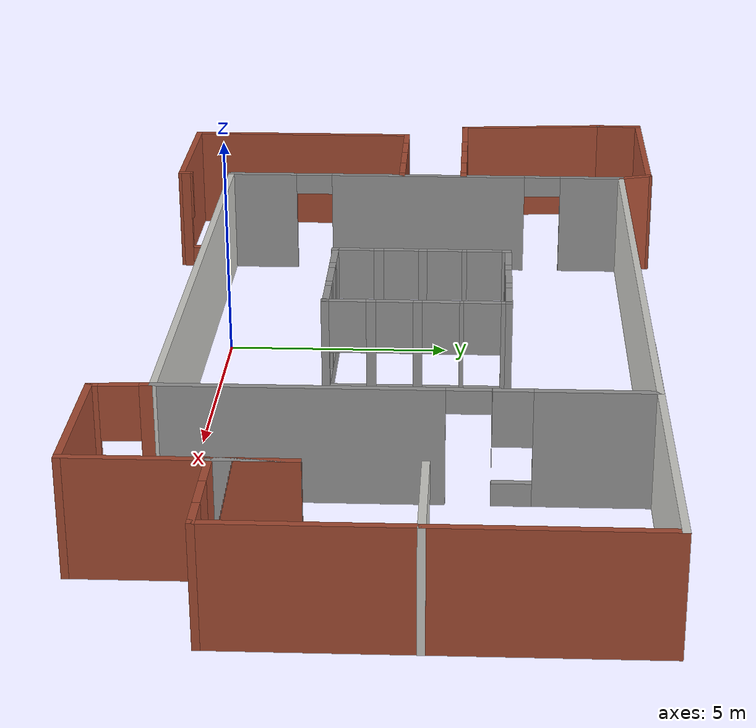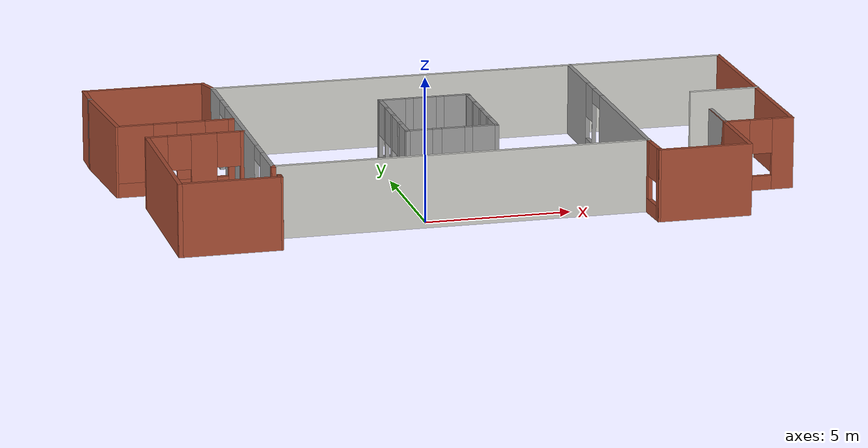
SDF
<?xml version='1.0'?>
<sdf version='1.6'>
  <model name='mainbuilding'>
    <pose frame=''>1.69313 4.10288 0 0 -0 0</pose>
    <link name='Wall_0'>
      <pose frame=''>-6.99313 0.272125 0 0 -0 1.5708</pose>
      <visual name='Wall_0_Visual_0'>
        <pose frame=''>-4.13418 0 1.25 0 -0 0</pose>
        <geometry>
          <box>
            <size>1.73164 0.15 2.5</size>
          </box>
        </geometry>
        <material>
          <script>
            <uri>file://media/materials/scripts/gazebo.material</uri>
            <name>Gazebo/Grey</name>
          </script>
          <ambient>1 1 1 1</ambient>
        </material>
        <meta>
          <layer>0</layer>
        </meta>
      </visual>
      <collision name='Wall_0_Collision_0'>
        <geometry>
          <box>
            <size>1.73164 0.15 2.5</size>
          </box>
        </geometry>
        <pose frame=''>-4.13418 0 1.25 0 -0 0</pose>
      </collision>
      <visual name='Wall_0_Visual_1'>
        <pose frame=''>0.06499 0 1.25 0 -0 0</pose>
        <geometry>
          <box>
            <size>4.86669 0.15 2.5</size>
          </box>
        </geometry>
        <material>
          <script>
            <uri>file://media/materials/scripts/gazebo.material</uri>
            <name>Gazebo/Grey</name>
          </script>
          <ambient>1 1 1 1</ambient>
        </material>
        <meta>
          <layer>0</layer>
        </meta>
      </visual>
      <collision name='Wall_0_Collision_1'>
        <geometry>
          <box>
            <size>4.86669 0.15 2.5</size>
          </box>
        </geometry>
        <pose frame=''>0.06499 0 1.25 0 -0 0</pose>
      </collision>
      <visual name='Wall_0_Visual_2'>
        <pose frame=''>4.19917 0 1.25 0 -0 0</pose>
        <geometry>
          <box>
            <size>1.60166 0.15 2.5</size>
          </box>
        </geometry>
        <material>
          <script>
            <uri>file://media/materials/scripts/gazebo.material</uri>
            <name>Gazebo/Grey</name>
          </script>
          <ambient>1 1 1 1</ambient>
        </material>
        <meta>
          <layer>0</layer>
        </meta>
      </visual>
      <collision name='Wall_0_Collision_2'>
        <geometry>
          <box>
            <size>1.60166 0.15 2.5</size>
          </box>
        </geometry>
        <pose frame=''>4.19917 0 1.25 0 -0 0</pose>
      </collision>
      <visual name='Wall_0_Visual_3'>
        <pose frame=''>-2.81836 0 2.25 0 -0 0</pose>
        <geometry>
          <box>
            <size>0.9 0.15 0.5</size>
          </box>
        </geometry>
        <material>
          <script>
            <uri>file://media/materials/scripts/gazebo.material</uri>
            <name>Gazebo/Grey</name>
          </script>
          <ambient>1 1 1 1</ambient>
        </material>
        <meta>
          <layer>0</layer>
        </meta>
      </visual>
      <collision name='Wall_0_Collision_3'>
        <geometry>
          <box>
            <size>0.9 0.15 0.5</size>
          </box>
        </geometry>
        <pose frame=''>-2.81836 0 2.25 0 -0 0</pose>
      </collision>
      <visual name='Wall_0_Visual_4'>
        <pose frame=''>2.94834 0 2.25 0 -0 0</pose>
        <geometry>
          <box>
            <size>0.9 0.15 0.5</size>
          </box>
        </geometry>
        <material>
          <script>
            <uri>file://media/materials/scripts/gazebo.material</uri>
            <name>Gazebo/Grey</name>
          </script>
          <ambient>1 1 1 1</ambient>
        </material>
        <meta>
          <layer>0</layer>
        </meta>
      </visual>
      <collision name='Wall_0_Collision_4'>
        <geometry>
          <box>
            <size>0.9 0.15 0.5</size>
          </box>
        </geometry>
        <pose frame=''>2.94834 0 2.25 0 -0 0</pose>
      </collision>
    </link>
    <link name='Wall_1'>
      <collision name='Wall_1_Collision'>
        <geometry>
          <box>
            <size>13 0.15 2.5</size>
          </box>
        </geometry>
        <pose frame=''>0 0 1.25 0 -0 0</pose>
      </collision>
      <visual name='Wall_1_Visual'>
        <pose frame=''>0 0 1.25 0 -0 0</pose>
        <geometry>
          <box>
            <size>13 0.15 2.5</size>
          </box>
        </geometry>
        <material>
          <script>
            <uri>file://media/materials/scripts/gazebo.material</uri>
            <name>Gazebo/CeilingTiled</name>
          </script>
          <ambient>1 1 1 1</ambient>
        </material>
        <meta>
          <layer>0</layer>
        </meta>
      </visual>
      <pose frame=''>-0.568132 5.19712 0 0 -0 0</pose>
    </link>
    <link name='Wall_10'>
      <pose frame=''>-9.04652 1.23125 0 0 -0 3.14159</pose>
      <visual name='Wall_10_Visual_0'>
        <pose frame=''>-1.93436 0 1.25 0 -0 0</pose>
        <geometry>
          <box>
            <size>0.331288 0.15 2.5</size>
          </box>
        </geometry>
        <material>
          <script>
            <uri>file://media/materials/scripts/gazebo.material</uri>
            <name>Gazebo/Bricks</name>
          </script>
          <ambient>1 1 1 1</ambient>
        </material>
        <meta>
          <layer>0</layer>
        </meta>
      </visual>
      <collision name='Wall_10_Collision_0'>
        <geometry>
          <box>
            <size>0.331288 0.15 2.5</size>
          </box>
        </geometry>
        <pose frame=''>-1.93436 0 1.25 0 -0 0</pose>
      </collision>
      <visual name='Wall_10_Visual_1'>
        <pose frame=''>0.165644 0 0.25 0 -0 0</pose>
        <geometry>
          <box>
            <size>3.86871 0.15 0.5</size>
          </box>
        </geometry>
        <material>
          <script>
            <uri>file://media/materials/scripts/gazebo.material</uri>
            <name>Gazebo/Bricks</name>
          </script>
          <ambient>1 1 1 1</ambient>
        </material>
        <meta>
          <layer>0</layer>
        </meta>
      </visual>
      <collision name='Wall_10_Collision_1'>
        <geometry>
          <box>
            <size>3.86871 0.15 0.5</size>
          </box>
        </geometry>
        <pose frame=''>0.165644 0 0.25 0 -0 0</pose>
      </collision>
      <visual name='Wall_10_Visual_2'>
        <pose frame=''>-0.478184 0 1.5 0 -0 0</pose>
        <geometry>
          <box>
            <size>0.981056 0.15 2</size>
          </box>
        </geometry>
        <material>
          <script>
            <uri>file://media/materials/scripts/gazebo.material</uri>
            <name>Gazebo/Bricks</name>
          </script>
          <ambient>1 1 1 1</ambient>
        </material>
        <meta>
          <layer>0</layer>
        </meta>
      </visual>
      <collision name='Wall_10_Collision_2'>
        <geometry>
          <box>
            <size>0.981056 0.15 2</size>
          </box>
        </geometry>
        <pose frame=''>-0.478184 0 1.5 0 -0 0</pose>
      </collision>
      <visual name='Wall_10_Visual_3'>
        <pose frame=''>1.45617 0 1.5 0 -0 0</pose>
        <geometry>
          <box>
            <size>1.28766 0.15 2</size>
          </box>
        </geometry>
        <material>
          <script>
            <uri>file://media/materials/scripts/gazebo.material</uri>
            <name>Gazebo/Bricks</name>
          </script>
          <ambient>1 1 1 1</ambient>
        </material>
        <meta>
          <layer>0</layer>
        </meta>
      </visual>
      <collision name='Wall_10_Collision_3'>
        <geometry>
          <box>
            <size>1.28766 0.15 2</size>
          </box>
        </geometry>
        <pose frame=''>1.45617 0 1.5 0 -0 0</pose>
      </collision>
      <visual name='Wall_10_Visual_4'>
        <pose frame=''>-1.36871 0 1.9 0 -0 0</pose>
        <geometry>
          <box>
            <size>0.8 0.15 1.2</size>
          </box>
        </geometry>
        <material>
          <script>
            <uri>file://media/materials/scripts/gazebo.material</uri>
            <name>Gazebo/Bricks</name>
          </script>
          <ambient>1 1 1 1</ambient>
        </material>
        <meta>
          <layer>0</layer>
        </meta>
      </visual>
      <collision name='Wall_10_Collision_4'>
        <geometry>
          <box>
            <size>0.8 0.15 1.2</size>
          </box>
        </geometry>
        <pose frame=''>-1.36871 0 1.9 0 -0 0</pose>
      </collision>
      <visual name='Wall_10_Visual_5'>
        <pose frame=''>0.412344 0 1.9 0 -0 0</pose>
        <geometry>
          <box>
            <size>0.8 0.15 1.2</size>
          </box>
        </geometry>
        <material>
          <script>
            <uri>file://media/materials/scripts/gazebo.material</uri>
            <name>Gazebo/Bricks</name>
          </script>
          <ambient>1 1 1 1</ambient>
        </material>
        <meta>
          <layer>0</layer>
        </meta>
      </visual>
      <collision name='Wall_10_Collision_5'>
        <geometry>
          <box>
            <size>0.8 0.15 1.2</size>
          </box>
        </geometry>
        <pose frame=''>0.412344 0 1.9 0 -0 0</pose>
      </collision>
    </link>
    <link name='Wall_11'>
      <collision name='Wall_11_Collision'>
        <geometry>
          <box>
            <size>3.7379 0.15 2.5</size>
          </box>
        </geometry>
        <pose frame=''>0 0 1.25 0 -0 0</pose>
      </collision>
      <visual name='Wall_11_Visual'>
        <pose frame=''>0 0 1.25 0 -0 0</pose>
        <geometry>
          <box>
            <size>3.7379 0.15 2.5</size>
          </box>
        </geometry>
        <material>
          <script>
            <uri>file://media/materials/scripts/gazebo.material</uri>
            <name>Gazebo/Bricks</name>
          </script>
          <ambient>1 1 1 1</ambient>
        </material>
        <meta>
          <layer>0</layer>
        </meta>
      </visual>
      <pose frame=''>-11.2354 3.01968 0 0 -0 1.64934</pose>
    </link>
    <link name='Wall_12'>
      <collision name='Wall_12_Collision'>
        <geometry>
          <box>
            <size>0.15 0.15 2.5</size>
          </box>
        </geometry>
        <pose frame=''>0 0 1.25 0 -0 0</pose>
      </collision>
      <visual name='Wall_12_Visual'>
        <pose frame=''>0 0 1.25 0 -0 0</pose>
        <geometry>
          <box>
            <size>0.15 0.15 2.5</size>
          </box>
        </geometry>
        <material>
          <script>
            <uri>file://media/materials/scripts/gazebo.material</uri>
            <name>Gazebo/Grey</name>
          </script>
          <ambient>1 1 1 1</ambient>
        </material>
        <meta>
          <layer>0</layer>
        </meta>
      </visual>
      <pose frame=''>-11.3762 4.8081 0 0 -0 0</pose>
    </link>
    <link name='Wall_13'>
      <collision name='Wall_13_Collision'>
        <geometry>
          <box>
            <size>1.25 0.15 2.5</size>
          </box>
        </geometry>
        <pose frame=''>0 0 1.25 0 -0 0</pose>
      </collision>
      <visual name='Wall_13_Visual'>
        <pose frame=''>0 0 1.25 0 -0 0</pose>
        <geometry>
          <box>
            <size>1.25 0.15 2.5</size>
          </box>
        </geometry>
        <material>
          <script>
            <uri>file://media/materials/scripts/gazebo.material</uri>
            <name>Gazebo/Bricks</name>
          </script>
          <ambient>1 1 1 1</ambient>
        </material>
        <meta>
          <layer>0</layer>
        </meta>
      </visual>
      <pose frame=''>-11.3762 5.3581 0 0 -0 1.5708</pose>
    </link>
    <link name='Wall_14'>
      <collision name='Wall_14_Collision'>
        <geometry>
          <box>
            <size>4.25 0.15 2.5</size>
          </box>
        </geometry>
        <pose frame=''>0 0 1.25 0 -0 0</pose>
      </collision>
      <visual name='Wall_14_Visual'>
        <pose frame=''>0 0 1.25 0 -0 0</pose>
        <geometry>
          <box>
            <size>4.25 0.15 2.5</size>
          </box>
        </geometry>
        <material>
          <script>
            <uri>file://media/materials/scripts/gazebo.material</uri>
            <name>Gazebo/Bricks</name>
          </script>
          <ambient>0 0 0 1</ambient>
        </material>
        <meta>
          <layer>0</layer>
        </meta>
      </visual>
      <pose frame=''>-9.25676 5.9081 0 0 -0 0</pose>
    </link>
    <link name='Wall_17'>
      <collision name='Wall_17_Collision'>
        <geometry>
          <box>
            <size>0.892375 0.15 2.5</size>
          </box>
        </geometry>
        <pose frame=''>0 0 1.25 0 -0 0</pose>
      </collision>
      <visual name='Wall_17_Visual'>
        <pose frame=''>0 0 1.25 0 -0 0</pose>
        <geometry>
          <box>
            <size>0.892375 0.15 2.5</size>
          </box>
        </geometry>
        <material>
          <script>
            <uri>file://media/materials/scripts/gazebo.material</uri>
            <name>Gazebo/Bricks</name>
          </script>
          <ambient>0 0 0 1</ambient>
        </material>
        <meta>
          <layer>0</layer>
        </meta>
      </visual>
      <pose frame=''>-7.09995 5.55261 0 0 0 -1.2789</pose>
    </link>
    <link name='Wall_19'>
      <pose frame=''>-8.68202 -0.325693 0 0 -0 3.14159</pose>
      <visual name='Wall_19_Visual_0'>
        <pose frame=''>-1.62337 0 1.25 0 -0 0</pose>
        <geometry>
          <box>
            <size>0.253265 0.15 2.5</size>
          </box>
        </geometry>
        <material>
          <script>
            <uri>file://media/materials/scripts/gazebo.material</uri>
            <name>Gazebo/Bricks</name>
          </script>
          <ambient>1 1 1 1</ambient>
        </material>
        <meta>
          <layer>0</layer>
        </meta>
      </visual>
      <collision name='Wall_19_Collision_0'>
        <geometry>
          <box>
            <size>0.253265 0.15 2.5</size>
          </box>
        </geometry>
        <pose frame=''>-1.62337 0 1.25 0 -0 0</pose>
      </collision>
      <visual name='Wall_19_Visual_1'>
        <pose frame=''>0.126632 0 0.25 0 -0 0</pose>
        <geometry>
          <box>
            <size>3.24674 0.15 0.5</size>
          </box>
        </geometry>
        <material>
          <script>
            <uri>file://media/materials/scripts/gazebo.material</uri>
            <name>Gazebo/Bricks</name>
          </script>
          <ambient>1 1 1 1</ambient>
        </material>
        <meta>
          <layer>0</layer>
        </meta>
      </visual>
      <collision name='Wall_19_Collision_1'>
        <geometry>
          <box>
            <size>3.24674 0.15 0.5</size>
          </box>
        </geometry>
        <pose frame=''>0.126632 0 0.25 0 -0 0</pose>
      </collision>
      <visual name='Wall_19_Visual_2'>
        <pose frame=''>-0.252468 0 1.5 0 -0 0</pose>
        <geometry>
          <box>
            <size>0.888534 0.15 2</size>
          </box>
        </geometry>
        <material>
          <script>
            <uri>file://media/materials/scripts/gazebo.material</uri>
            <name>Gazebo/Bricks</name>
          </script>
          <ambient>1 1 1 1</ambient>
        </material>
        <meta>
          <layer>0</layer>
        </meta>
      </visual>
      <collision name='Wall_19_Collision_2'>
        <geometry>
          <box>
            <size>0.888534 0.15 2</size>
          </box>
        </geometry>
        <pose frame=''>-0.252468 0 1.5 0 -0 0</pose>
      </collision>
      <visual name='Wall_19_Visual_3'>
        <pose frame=''>1.3709 0 1.5 0 -0 0</pose>
        <geometry>
          <box>
            <size>0.758201 0.15 2</size>
          </box>
        </geometry>
        <material>
          <script>
            <uri>file://media/materials/scripts/gazebo.material</uri>
            <name>Gazebo/Bricks</name>
          </script>
          <ambient>1 1 1 1</ambient>
        </material>
        <meta>
          <layer>0</layer>
        </meta>
      </visual>
      <collision name='Wall_19_Collision_3'>
        <geometry>
          <box>
            <size>0.758201 0.15 2</size>
          </box>
        </geometry>
        <pose frame=''>1.3709 0 1.5 0 -0 0</pose>
      </collision>
      <visual name='Wall_19_Visual_4'>
        <pose frame=''>-1.09674 0 1.9 0 -0 0</pose>
        <geometry>
          <box>
            <size>0.8 0.15 1.2</size>
          </box>
        </geometry>
        <material>
          <script>
            <uri>file://media/materials/scripts/gazebo.material</uri>
            <name>Gazebo/Bricks</name>
          </script>
          <ambient>1 1 1 1</ambient>
        </material>
        <meta>
          <layer>0</layer>
        </meta>
      </visual>
      <collision name='Wall_19_Collision_4'>
        <geometry>
          <box>
            <size>0.8 0.15 1.2</size>
          </box>
        </geometry>
        <pose frame=''>-1.09674 0 1.9 0 -0 0</pose>
      </collision>
      <visual name='Wall_19_Visual_5'>
        <pose frame=''>0.591799 0 1.9 0 -0 0</pose>
        <geometry>
          <box>
            <size>0.8 0.15 1.2</size>
          </box>
        </geometry>
        <material>
          <script>
            <uri>file://media/materials/scripts/gazebo.material</uri>
            <name>Gazebo/Bricks</name>
          </script>
          <ambient>1 1 1 1</ambient>
        </material>
        <meta>
          <layer>0</layer>
        </meta>
      </visual>
      <collision name='Wall_19_Collision_5'>
        <geometry>
          <box>
            <size>0.8 0.15 1.2</size>
          </box>
        </geometry>
        <pose frame=''>0.591799 0 1.9 0 -0 0</pose>
      </collision>
    </link>
    <link name='Wall_2'>
      <pose frame=''>5.85687 0.272125 0 0 0 -1.5708</pose>
      <visual name='Wall_2_Visual_0'>
        <pose frame=''>-3.74267 0 1.25 0 -0 0</pose>
        <geometry>
          <box>
            <size>2.51467 0.15 2.5</size>
          </box>
        </geometry>
        <material>
          <script>
            <uri>file://media/materials/scripts/gazebo.material</uri>
            <name>Gazebo/Grey</name>
          </script>
          <ambient>1 1 1 1</ambient>
        </material>
        <meta>
          <layer>0</layer>
        </meta>
      </visual>
      <collision name='Wall_2_Collision_0'>
        <geometry>
          <box>
            <size>2.51467 0.15 2.5</size>
          </box>
        </geometry>
        <pose frame=''>-3.74267 0 1.25 0 -0 0</pose>
      </collision>
      <visual name='Wall_2_Visual_1'>
        <pose frame=''>2.11025 0 1.25 0 -0 0</pose>
        <geometry>
          <box>
            <size>5.7795 0.15 2.5</size>
          </box>
        </geometry>
        <material>
          <script>
            <uri>file://media/materials/scripts/gazebo.material</uri>
            <name>Gazebo/Grey</name>
          </script>
          <ambient>1 1 1 1</ambient>
        </material>
        <meta>
          <layer>0</layer>
        </meta>
      </visual>
      <collision name='Wall_2_Collision_1'>
        <geometry>
          <box>
            <size>5.7795 0.15 2.5</size>
          </box>
        </geometry>
        <pose frame=''>2.11025 0 1.25 0 -0 0</pose>
      </collision>
      <visual name='Wall_2_Visual_2'>
        <pose frame=''>-2.08242 0 0.25 0 -0 0</pose>
        <geometry>
          <box>
            <size>0.805833 0.15 0.5</size>
          </box>
        </geometry>
        <material>
          <script>
            <uri>file://media/materials/scripts/gazebo.material</uri>
            <name>Gazebo/Grey</name>
          </script>
          <ambient>1 1 1 1</ambient>
        </material>
        <meta>
          <layer>0</layer>
        </meta>
      </visual>
      <collision name='Wall_2_Collision_2'>
        <geometry>
          <box>
            <size>0.805833 0.15 0.5</size>
          </box>
        </geometry>
        <pose frame=''>-2.08242 0 0.25 0 -0 0</pose>
      </collision>
      <visual name='Wall_2_Visual_3'>
        <pose frame=''>-1.68242 0 1.5 0 -0 0</pose>
        <geometry>
          <box>
            <size>0.005833 0.15 2</size>
          </box>
        </geometry>
        <material>
          <script>
            <uri>file://media/materials/scripts/gazebo.material</uri>
            <name>Gazebo/Grey</name>
          </script>
          <ambient>1 1 1 1</ambient>
        </material>
        <meta>
          <layer>0</layer>
        </meta>
      </visual>
      <collision name='Wall_2_Collision_3'>
        <geometry>
          <box>
            <size>0.005833 0.15 2</size>
          </box>
        </geometry>
        <pose frame=''>-1.68242 0 1.5 0 -0 0</pose>
      </collision>
      <visual name='Wall_2_Visual_4'>
        <pose frame=''>-2.08533 0 1.9 0 -0 0</pose>
        <geometry>
          <box>
            <size>0.8 0.15 1.2</size>
          </box>
        </geometry>
        <material>
          <script>
            <uri>file://media/materials/scripts/gazebo.material</uri>
            <name>Gazebo/Grey</name>
          </script>
          <ambient>1 1 1 1</ambient>
        </material>
        <meta>
          <layer>0</layer>
        </meta>
      </visual>
      <collision name='Wall_2_Collision_4'>
        <geometry>
          <box>
            <size>0.8 0.15 1.2</size>
          </box>
        </geometry>
        <pose frame=''>-2.08533 0 1.9 0 -0 0</pose>
      </collision>
      <visual name='Wall_2_Visual_5'>
        <pose frame=''>-1.2295 0 2.25 0 -0 0</pose>
        <geometry>
          <box>
            <size>0.9 0.15 0.5</size>
          </box>
        </geometry>
        <material>
          <script>
            <uri>file://media/materials/scripts/gazebo.material</uri>
            <name>Gazebo/Grey</name>
          </script>
          <ambient>1 1 1 1</ambient>
        </material>
        <meta>
          <layer>0</layer>
        </meta>
      </visual>
      <collision name='Wall_2_Collision_5'>
        <geometry>
          <box>
            <size>0.9 0.15 0.5</size>
          </box>
        </geometry>
        <pose frame=''>-1.2295 0 2.25 0 -0 0</pose>
      </collision>
    </link>
    <link name='Wall_20'>
      <collision name='Wall_20_Collision'>
        <geometry>
          <box>
            <size>5.75 0.15 2.5</size>
          </box>
        </geometry>
        <pose frame=''>0 0 1.25 0 -0 0</pose>
      </collision>
      <visual name='Wall_20_Visual'>
        <pose frame=''>0 0 1.25 0 -0 0</pose>
        <geometry>
          <box>
            <size>5.75 0.15 2.5</size>
          </box>
        </geometry>
        <material>
          <script>
            <uri>file://media/materials/scripts/gazebo.material</uri>
            <name>Gazebo/Bricks</name>
          </script>
          <ambient>1 1 1 1</ambient>
        </material>
        <meta>
          <layer>0</layer>
        </meta>
      </visual>
      <pose frame=''>-10.357 -3.12569 0 0 0 -1.5708</pose>
    </link>
    <link name='Wall_25'>
      <collision name='Wall_25_Collision'>
        <geometry>
          <box>
            <size>3.5 0.15 2.5</size>
          </box>
        </geometry>
        <pose frame=''>0 0 1.25 0 -0 0</pose>
      </collision>
      <visual name='Wall_25_Visual'>
        <pose frame=''>0 0 1.25 0 -0 0</pose>
        <geometry>
          <box>
            <size>3.5 0.15 2.5</size>
          </box>
        </geometry>
        <material>
          <script>
            <uri>file://media/materials/scripts/gazebo.material</uri>
            <name>Gazebo/Bricks</name>
          </script>
          <ambient>1 1 1 1</ambient>
        </material>
        <meta>
          <layer>0</layer>
        </meta>
      </visual>
      <pose frame=''>-8.68202 -5.92569 0 0 -0 0</pose>
    </link>
    <link name='Wall_26'>
      <pose frame=''>-7.00008 -5.28928 0 0 -0 1.55988</pose>
      <visual name='Wall_26_Visual_0'>
        <pose frame=''>-0.560758 0 1.25 0 -0 0</pose>
        <geometry>
          <box>
            <size>0.301377 0.15 2.5</size>
          </box>
        </geometry>
        <material>
          <script>
            <uri>file://media/materials/scripts/gazebo.material</uri>
            <name>Gazebo/Bricks</name>
          </script>
          <ambient>1 1 1 1</ambient>
        </material>
        <meta>
          <layer>0</layer>
        </meta>
      </visual>
      <collision name='Wall_26_Collision_0'>
        <geometry>
          <box>
            <size>0.301377 0.15 2.5</size>
          </box>
        </geometry>
        <pose frame=''>-0.560758 0 1.25 0 -0 0</pose>
      </collision>
      <visual name='Wall_26_Visual_1'>
        <pose frame=''>0.150689 0 0.25 0 -0 0</pose>
        <geometry>
          <box>
            <size>1.12152 0.15 0.5</size>
          </box>
        </geometry>
        <material>
          <script>
            <uri>file://media/materials/scripts/gazebo.material</uri>
            <name>Gazebo/Bricks</name>
          </script>
          <ambient>1 1 1 1</ambient>
        </material>
        <meta>
          <layer>0</layer>
        </meta>
      </visual>
      <collision name='Wall_26_Collision_1'>
        <geometry>
          <box>
            <size>1.12152 0.15 0.5</size>
          </box>
        </geometry>
        <pose frame=''>0.150689 0 0.25 0 -0 0</pose>
      </collision>
      <visual name='Wall_26_Visual_2'>
        <pose frame=''>0.574954 0 1.5 0 -0 0</pose>
        <geometry>
          <box>
            <size>0.272986 0.15 2</size>
          </box>
        </geometry>
        <material>
          <script>
            <uri>file://media/materials/scripts/gazebo.material</uri>
            <name>Gazebo/Bricks</name>
          </script>
          <ambient>1 1 1 1</ambient>
        </material>
        <meta>
          <layer>0</layer>
        </meta>
      </visual>
      <collision name='Wall_26_Collision_2'>
        <geometry>
          <box>
            <size>0.272986 0.15 2</size>
          </box>
        </geometry>
        <pose frame=''>0.574954 0 1.5 0 -0 0</pose>
      </collision>
      <visual name='Wall_26_Visual_3'>
        <pose frame=''>-0.385804 0 1.9 0 -0 0</pose>
        <geometry>
          <box>
            <size>0.04853 0.15 1.2</size>
          </box>
        </geometry>
        <material>
          <script>
            <uri>file://media/materials/scripts/gazebo.material</uri>
            <name>Gazebo/Bricks</name>
          </script>
          <ambient>1 1 1 1</ambient>
        </material>
        <meta>
          <layer>0</layer>
        </meta>
      </visual>
      <collision name='Wall_26_Collision_3'>
        <geometry>
          <box>
            <size>0.04853 0.15 1.2</size>
          </box>
        </geometry>
        <pose frame=''>-0.385804 0 1.9 0 -0 0</pose>
      </collision>
    </link>
    <link name='Wall_28'>
      <collision name='Wall_28_Collision'>
        <geometry>
          <box>
            <size>8 0.15 2.5</size>
          </box>
        </geometry>
        <pose frame=''>0 0 1.25 0 -0 0</pose>
      </collision>
      <visual name='Wall_28_Visual'>
        <pose frame=''>0 0 1.25 0 -0 0</pose>
        <geometry>
          <box>
            <size>8 0.15 2.5</size>
          </box>
        </geometry>
        <material>
          <script>
            <uri>file://media/materials/scripts/gazebo.material</uri>
            <name>Gazebo/CeilingTiled</name>
          </script>
          <ambient>1 1 1 1</ambient>
        </material>
        <meta>
          <layer>0</layer>
        </meta>
      </visual>
      <pose frame=''>7.4424 5.20252 0 0 -0 0</pose>
    </link>
    <link name='Wall_29'>
      <collision name='Wall_29_Collision'>
        <geometry>
          <box>
            <size>8.5 0.15 2.5</size>
          </box>
        </geometry>
        <pose frame=''>0 0 1.25 0 -0 0</pose>
      </collision>
      <visual name='Wall_29_Visual'>
        <pose frame=''>0 0 1.25 0 -0 0</pose>
        <geometry>
          <box>
            <size>8.5 0.15 2.5</size>
          </box>
        </geometry>
        <material>
          <script>
            <uri>file://media/materials/scripts/gazebo.material</uri>
            <name>Gazebo/Bricks</name>
          </script>
          <ambient>1 1 1 1</ambient>
        </material>
        <meta>
          <layer>0</layer>
        </meta>
      </visual>
      <pose frame=''>11.3674 1.02752 0 0 0 -1.5708</pose>
    </link>
    <link name='Wall_3'>
      <collision name='Wall_3_Collision'>
        <geometry>
          <box>
            <size>13 0.15 2.5</size>
          </box>
        </geometry>
        <pose frame=''>0 0 1.25 0 -0 0</pose>
      </collision>
      <visual name='Wall_3_Visual'>
        <pose frame=''>0 0 1.25 0 -0 0</pose>
        <geometry>
          <box>
            <size>13 0.15 2.5</size>
          </box>
        </geometry>
        <material>
          <script>
            <uri>file://media/materials/scripts/gazebo.material</uri>
            <name>Gazebo/CeilingTiled</name>
          </script>
          <ambient>0.760784 0.662745 0.627451 1</ambient>
        </material>
        <meta>
          <layer>0</layer>
        </meta>
      </visual>
      <pose frame=''>-0.568132 -4.65287 0 0 -0 3.14159</pose>
    </link>
    <link name='Wall_30'>
      <pose frame=''>10.1924 -3.14748 0 0 -0 3.14159</pose>
      <visual name='Wall_30_Visual_0'>
        <pose frame=''>-0.864569 0 1.25 0 -0 0</pose>
        <geometry>
          <box>
            <size>0.770862 0.15 2.5</size>
          </box>
        </geometry>
        <material>
          <script>
            <uri>file://media/materials/scripts/gazebo.material</uri>
            <name>Gazebo/Bricks</name>
          </script>
          <ambient>1 1 1 1</ambient>
        </material>
        <meta>
          <layer>0</layer>
        </meta>
      </visual>
      <collision name='Wall_30_Collision_0'>
        <geometry>
          <box>
            <size>0.770862 0.15 2.5</size>
          </box>
        </geometry>
        <pose frame=''>-0.864569 0 1.25 0 -0 0</pose>
      </collision>
      <visual name='Wall_30_Visual_1'>
        <pose frame=''>0.385431 0 0.25 0 -0 0</pose>
        <geometry>
          <box>
            <size>1.72914 0.15 0.5</size>
          </box>
        </geometry>
        <material>
          <script>
            <uri>file://media/materials/scripts/gazebo.material</uri>
            <name>Gazebo/Bricks</name>
          </script>
          <ambient>1 1 1 1</ambient>
        </material>
        <meta>
          <layer>0</layer>
        </meta>
      </visual>
      <collision name='Wall_30_Collision_1'>
        <geometry>
          <box>
            <size>1.72914 0.15 0.5</size>
          </box>
        </geometry>
        <pose frame=''>0.385431 0 0.25 0 -0 0</pose>
      </collision>
      <visual name='Wall_30_Visual_2'>
        <pose frame=''>0.785431 0 1.5 0 -0 0</pose>
        <geometry>
          <box>
            <size>0.929138 0.15 2</size>
          </box>
        </geometry>
        <material>
          <script>
            <uri>file://media/materials/scripts/gazebo.material</uri>
            <name>Gazebo/Bricks</name>
          </script>
          <ambient>1 1 1 1</ambient>
        </material>
        <meta>
          <layer>0</layer>
        </meta>
      </visual>
      <collision name='Wall_30_Collision_2'>
        <geometry>
          <box>
            <size>0.929138 0.15 2</size>
          </box>
        </geometry>
        <pose frame=''>0.785431 0 1.5 0 -0 0</pose>
      </collision>
      <visual name='Wall_30_Visual_3'>
        <pose frame=''>-0.079138 0 1.9 0 -0 0</pose>
        <geometry>
          <box>
            <size>0.8 0.15 1.2</size>
          </box>
        </geometry>
        <material>
          <script>
            <uri>file://media/materials/scripts/gazebo.material</uri>
            <name>Gazebo/Bricks</name>
          </script>
          <ambient>1 1 1 1</ambient>
        </material>
        <meta>
          <layer>0</layer>
        </meta>
      </visual>
      <collision name='Wall_30_Collision_3'>
        <geometry>
          <box>
            <size>0.8 0.15 1.2</size>
          </box>
        </geometry>
        <pose frame=''>-0.079138 0 1.9 0 -0 0</pose>
      </collision>
    </link>
    <link name='Wall_31'>
      <collision name='Wall_31_Collision'>
        <geometry>
          <box>
            <size>1.75 0.15 2.5</size>
          </box>
        </geometry>
        <pose frame=''>0 0 1.25 0 -0 0</pose>
      </collision>
      <visual name='Wall_31_Visual'>
        <pose frame=''>0 0 1.25 0 -0 0</pose>
        <geometry>
          <box>
            <size>1.75 0.15 2.5</size>
          </box>
        </geometry>
        <material>
          <script>
            <uri>file://media/materials/scripts/gazebo.material</uri>
            <name>Gazebo/Grey</name>
          </script>
          <ambient>1 1 1 1</ambient>
        </material>
        <meta>
          <layer>0</layer>
        </meta>
      </visual>
      <pose frame=''>9.0174 -2.34748 0 0 -0 1.5708</pose>
    </link>
    <link name='Wall_32'>
      <collision name='Wall_32_Collision'>
        <geometry>
          <box>
            <size>4.5 0.15 2.5</size>
          </box>
        </geometry>
        <pose frame=''>0 0 1.25 0 -0 0</pose>
      </collision>
      <visual name='Wall_32_Visual'>
        <pose frame=''>0 0 1.25 0 -0 0</pose>
        <geometry>
          <box>
            <size>4.5 0.15 2.5</size>
          </box>
        </geometry>
        <material>
          <script>
            <uri>file://media/materials/scripts/gazebo.material</uri>
            <name>Gazebo/Bricks</name>
          </script>
          <ambient>1 1 1 1</ambient>
        </material>
        <meta>
          <layer>0</layer>
        </meta>
      </visual>
      <pose frame=''>9.0174 -3.72248 0 0 0 -1.5708</pose>
    </link>
    <link name='Wall_33'>
      <collision name='Wall_33_Collision'>
        <geometry>
          <box>
            <size>3.25 0.15 2.5</size>
          </box>
        </geometry>
        <pose frame=''>0 0 1.25 0 -0 0</pose>
      </collision>
      <visual name='Wall_33_Visual'>
        <pose frame=''>0 0 1.25 0 -0 0</pose>
        <geometry>
          <box>
            <size>3.25 0.15 2.5</size>
          </box>
        </geometry>
        <material>
          <script>
            <uri>file://media/materials/scripts/gazebo.material</uri>
            <name>Gazebo/Bricks</name>
          </script>
          <ambient>1 1 1 1</ambient>
        </material>
        <meta>
          <layer>0</layer>
        </meta>
      </visual>
      <pose frame=''>7.4674 -5.89748 0 0 -0 3.14159</pose>
    </link>
    <link name='Wall_34'>
      <pose frame=''>5.88714 -5.27518 0 0 -0 1.6194</pose>
      <visual name='Wall_34_Visual_0'>
        <pose frame=''>-0.570416 0 1.25 0 -0 0</pose>
        <geometry>
          <box>
            <size>0.255241 0.15 2.5</size>
          </box>
        </geometry>
        <material>
          <script>
            <uri>file://media/materials/scripts/gazebo.material</uri>
            <name>Gazebo/Bricks</name>
          </script>
          <ambient>1 1 1 1</ambient>
        </material>
        <meta>
          <layer>0</layer>
        </meta>
      </visual>
      <collision name='Wall_34_Collision_0'>
        <geometry>
          <box>
            <size>0.255241 0.15 2.5</size>
          </box>
        </geometry>
        <pose frame=''>-0.570416 0 1.25 0 -0 0</pose>
      </collision>
      <visual name='Wall_34_Visual_1'>
        <pose frame=''>0.127621 0 0.25 0 -0 0</pose>
        <geometry>
          <box>
            <size>1.14083 0.15 0.5</size>
          </box>
        </geometry>
        <material>
          <script>
            <uri>file://media/materials/scripts/gazebo.material</uri>
            <name>Gazebo/Bricks</name>
          </script>
          <ambient>1 1 1 1</ambient>
        </material>
        <meta>
          <layer>0</layer>
        </meta>
      </visual>
      <collision name='Wall_34_Collision_1'>
        <geometry>
          <box>
            <size>1.14083 0.15 0.5</size>
          </box>
        </geometry>
        <pose frame=''>0.127621 0 0.25 0 -0 0</pose>
      </collision>
      <visual name='Wall_34_Visual_2'>
        <pose frame=''>0.527621 0 1.5 0 -0 0</pose>
        <geometry>
          <box>
            <size>0.340833 0.15 2</size>
          </box>
        </geometry>
        <material>
          <script>
            <uri>file://media/materials/scripts/gazebo.material</uri>
            <name>Gazebo/Bricks</name>
          </script>
          <ambient>1 1 1 1</ambient>
        </material>
        <meta>
          <layer>0</layer>
        </meta>
      </visual>
      <collision name='Wall_34_Collision_2'>
        <geometry>
          <box>
            <size>0.340833 0.15 2</size>
          </box>
        </geometry>
        <pose frame=''>0.527621 0 1.5 0 -0 0</pose>
      </collision>
      <visual name='Wall_34_Visual_3'>
        <pose frame=''>-0.042796 0 1.9 0 -0 0</pose>
        <geometry>
          <box>
            <size>0.8 0.15 1.2</size>
          </box>
        </geometry>
        <material>
          <script>
            <uri>file://media/materials/scripts/gazebo.material</uri>
            <name>Gazebo/Bricks</name>
          </script>
          <ambient>1 1 1 1</ambient>
        </material>
        <meta>
          <layer>0</layer>
        </meta>
      </visual>
      <collision name='Wall_34_Collision_3'>
        <geometry>
          <box>
            <size>0.8 0.15 1.2</size>
          </box>
        </geometry>
        <pose frame=''>-0.042796 0 1.9 0 -0 0</pose>
      </collision>
    </link>
    <link name='Wall_38'>
      <collision name='Wall_38_Collision'>
        <geometry>
          <box>
            <size>2.5 0.15 2.5</size>
          </box>
        </geometry>
        <pose frame=''>0 0 1.25 0 -0 0</pose>
      </collision>
      <visual name='Wall_38_Visual'>
        <pose frame=''>0 0 1.25 0 -0 0</pose>
        <geometry>
          <box>
            <size>2.5 0.15 2.5</size>
          </box>
        </geometry>
        <material>
          <script>
            <uri>file://media/materials/scripts/gazebo.material</uri>
            <name>Gazebo/CeilingTiled</name>
          </script>
          <ambient>1 1 1 1</ambient>
        </material>
        <meta>
          <layer>0</layer>
        </meta>
      </visual>
      <pose frame=''>10.2068 0.761445 0 0 -0 3.14159</pose>
    </link>
    <link name='Wall_5'>
      <pose frame=''>-1.70168 0.33554 0 0 0 -1.5708</pose>
      <visual name='Wall_5_Visual_0'>
        <pose frame=''>-1.94918 0 1.25 0 -0 0</pose>
        <geometry>
          <box>
            <size>0.217302 0.15 2.5</size>
          </box>
        </geometry>
        <material>
          <script>
            <uri>file://media/materials/scripts/gazebo.material</uri>
            <name>Gazebo/Grey</name>
          </script>
          <ambient>1 1 1 1</ambient>
        </material>
        <meta>
          <layer>0</layer>
        </meta>
      </visual>
      <collision name='Wall_5_Collision_0'>
        <geometry>
          <box>
            <size>0.217302 0.15 2.5</size>
          </box>
        </geometry>
        <pose frame=''>-1.94918 0 1.25 0 -0 0</pose>
      </collision>
      <visual name='Wall_5_Visual_1'>
        <pose frame=''>0.108651 0 0.25 0 -0 0</pose>
        <geometry>
          <box>
            <size>3.89835 0.15 0.5</size>
          </box>
        </geometry>
        <material>
          <script>
            <uri>file://media/materials/scripts/gazebo.material</uri>
            <name>Gazebo/Grey</name>
          </script>
          <ambient>1 1 1 1</ambient>
        </material>
        <meta>
          <layer>0</layer>
        </meta>
      </visual>
      <collision name='Wall_5_Collision_1'>
        <geometry>
          <box>
            <size>3.89835 0.15 0.5</size>
          </box>
        </geometry>
        <pose frame=''>0.108651 0 0.25 0 -0 0</pose>
      </collision>
      <visual name='Wall_5_Visual_2'>
        <pose frame=''>-0.985524 0 1.5 0 -0 0</pose>
        <geometry>
          <box>
            <size>0.11 0.15 2</size>
          </box>
        </geometry>
        <material>
          <script>
            <uri>file://media/materials/scripts/gazebo.material</uri>
            <name>Gazebo/Grey</name>
          </script>
          <ambient>1 1 1 1</ambient>
        </material>
        <meta>
          <layer>0</layer>
        </meta>
      </visual>
      <collision name='Wall_5_Collision_2'>
        <geometry>
          <box>
            <size>0.11 0.15 2</size>
          </box>
        </geometry>
        <pose frame=''>-0.985524 0 1.5 0 -0 0</pose>
      </collision>
      <visual name='Wall_5_Visual_3'>
        <pose frame=''>-0.035524 0 1.5 0 -0 0</pose>
        <geometry>
          <box>
            <size>0.19 0.15 2</size>
          </box>
        </geometry>
        <material>
          <script>
            <uri>file://media/materials/scripts/gazebo.material</uri>
            <name>Gazebo/Grey</name>
          </script>
          <ambient>1 1 1 1</ambient>
        </material>
        <meta>
          <layer>0</layer>
        </meta>
      </visual>
      <collision name='Wall_5_Collision_3'>
        <geometry>
          <box>
            <size>0.19 0.15 2</size>
          </box>
        </geometry>
        <pose frame=''>-0.035524 0 1.5 0 -0 0</pose>
      </collision>
      <visual name='Wall_5_Visual_4'>
        <pose frame=''>0.97312 0 1.5 0 -0 0</pose>
        <geometry>
          <box>
            <size>0.227289 0.15 2</size>
          </box>
        </geometry>
        <material>
          <script>
            <uri>file://media/materials/scripts/gazebo.material</uri>
            <name>Gazebo/Grey</name>
          </script>
          <ambient>1 1 1 1</ambient>
        </material>
        <meta>
          <layer>0</layer>
        </meta>
      </visual>
      <collision name='Wall_5_Collision_4'>
        <geometry>
          <box>
            <size>0.227289 0.15 2</size>
          </box>
        </geometry>
        <pose frame=''>0.97312 0 1.5 0 -0 0</pose>
      </collision>
      <visual name='Wall_5_Visual_5'>
        <pose frame=''>1.9723 0 1.5 0 -0 0</pose>
        <geometry>
          <box>
            <size>0.171062 0.15 2</size>
          </box>
        </geometry>
        <material>
          <script>
            <uri>file://media/materials/scripts/gazebo.material</uri>
            <name>Gazebo/Grey</name>
          </script>
          <ambient>1 1 1 1</ambient>
        </material>
        <meta>
          <layer>0</layer>
        </meta>
      </visual>
      <collision name='Wall_5_Collision_5'>
        <geometry>
          <box>
            <size>0.171062 0.15 2</size>
          </box>
        </geometry>
        <pose frame=''>1.9723 0 1.5 0 -0 0</pose>
      </collision>
      <visual name='Wall_5_Visual_6'>
        <pose frame=''>-1.44052 0 1.9 0 -0 0</pose>
        <geometry>
          <box>
            <size>0.8 0.15 1.2</size>
          </box>
        </geometry>
        <material>
          <script>
            <uri>file://media/materials/scripts/gazebo.material</uri>
            <name>Gazebo/Grey</name>
          </script>
          <ambient>1 1 1 1</ambient>
        </material>
        <meta>
          <layer>0</layer>
        </meta>
      </visual>
      <collision name='Wall_5_Collision_6'>
        <geometry>
          <box>
            <size>0.8 0.15 1.2</size>
          </box>
        </geometry>
        <pose frame=''>-1.44052 0 1.9 0 -0 0</pose>
      </collision>
      <visual name='Wall_5_Visual_7'>
        <pose frame=''>-0.530524 0 1.9 0 -0 0</pose>
        <geometry>
          <box>
            <size>0.8 0.15 1.2</size>
          </box>
        </geometry>
        <material>
          <script>
            <uri>file://media/materials/scripts/gazebo.material</uri>
            <name>Gazebo/Grey</name>
          </script>
          <ambient>1 1 1 1</ambient>
        </material>
        <meta>
          <layer>0</layer>
        </meta>
      </visual>
      <collision name='Wall_5_Collision_7'>
        <geometry>
          <box>
            <size>0.8 0.15 1.2</size>
          </box>
        </geometry>
        <pose frame=''>-0.530524 0 1.9 0 -0 0</pose>
      </collision>
      <visual name='Wall_5_Visual_8'>
        <pose frame=''>0.459476 0 1.9 0 -0 0</pose>
        <geometry>
          <box>
            <size>0.8 0.15 1.2</size>
          </box>
        </geometry>
        <material>
          <script>
            <uri>file://media/materials/scripts/gazebo.material</uri>
            <name>Gazebo/Grey</name>
          </script>
          <ambient>1 1 1 1</ambient>
        </material>
        <meta>
          <layer>0</layer>
        </meta>
      </visual>
      <collision name='Wall_5_Collision_8'>
        <geometry>
          <box>
            <size>0.8 0.15 1.2</size>
          </box>
        </geometry>
        <pose frame=''>0.459476 0 1.9 0 -0 0</pose>
      </collision>
      <visual name='Wall_5_Visual_9'>
        <pose frame=''>1.48676 0 1.9 0 -0 0</pose>
        <geometry>
          <box>
            <size>0.8 0.15 1.2</size>
          </box>
        </geometry>
        <material>
          <script>
            <uri>file://media/materials/scripts/gazebo.material</uri>
            <name>Gazebo/Grey</name>
          </script>
          <ambient>1 1 1 1</ambient>
        </material>
        <meta>
          <layer>0</layer>
        </meta>
      </visual>
      <collision name='Wall_5_Collision_9'>
        <geometry>
          <box>
            <size>0.8 0.15 1.2</size>
          </box>
        </geometry>
        <pose frame=''>1.48676 0 1.9 0 -0 0</pose>
      </collision>
    </link>
    <link name='Wall_6'>
      <pose frame=''>-0.151679 -1.62416 0 0 -0 0</pose>
      <visual name='Wall_6_Visual_0'>
        <pose frame=''>-1.55536 0 1.25 0 -0 0</pose>
        <geometry>
          <box>
            <size>0.139277 0.15 2.5</size>
          </box>
        </geometry>
        <material>
          <script>
            <uri>file://media/materials/scripts/gazebo.material</uri>
            <name>Gazebo/Grey</name>
          </script>
          <ambient>1 1 1 1</ambient>
        </material>
        <meta>
          <layer>0</layer>
        </meta>
      </visual>
      <collision name='Wall_6_Collision_0'>
        <geometry>
          <box>
            <size>0.139277 0.15 2.5</size>
          </box>
        </geometry>
        <pose frame=''>-1.55536 0 1.25 0 -0 0</pose>
      </collision>
      <visual name='Wall_6_Visual_1'>
        <pose frame=''>0.069639 0 0.25 0 -0 0</pose>
        <geometry>
          <box>
            <size>3.11072 0.15 0.5</size>
          </box>
        </geometry>
        <material>
          <script>
            <uri>file://media/materials/scripts/gazebo.material</uri>
            <name>Gazebo/Grey</name>
          </script>
          <ambient>1 1 1 1</ambient>
        </material>
        <meta>
          <layer>0</layer>
        </meta>
      </visual>
      <collision name='Wall_6_Collision_1'>
        <geometry>
          <box>
            <size>3.11072 0.15 0.5</size>
          </box>
        </geometry>
        <pose frame=''>0.069639 0 0.25 0 -0 0</pose>
      </collision>
      <visual name='Wall_6_Visual_2'>
        <pose frame=''>-0.525723 0 1.5 0 -0 0</pose>
        <geometry>
          <box>
            <size>0.32 0.15 2</size>
          </box>
        </geometry>
        <material>
          <script>
            <uri>file://media/materials/scripts/gazebo.material</uri>
            <name>Gazebo/Grey</name>
          </script>
          <ambient>1 1 1 1</ambient>
        </material>
        <meta>
          <layer>0</layer>
        </meta>
      </visual>
      <collision name='Wall_6_Collision_2'>
        <geometry>
          <box>
            <size>0.32 0.15 2</size>
          </box>
        </geometry>
        <pose frame=''>-0.525723 0 1.5 0 -0 0</pose>
      </collision>
      <visual name='Wall_6_Visual_3'>
        <pose frame=''>0.564277 0 1.5 0 -0 0</pose>
        <geometry>
          <box>
            <size>0.26 0.15 2</size>
          </box>
        </geometry>
        <material>
          <script>
            <uri>file://media/materials/scripts/gazebo.material</uri>
            <name>Gazebo/Grey</name>
          </script>
          <ambient>1 1 1 1</ambient>
        </material>
        <meta>
          <layer>0</layer>
        </meta>
      </visual>
      <collision name='Wall_6_Collision_3'>
        <geometry>
          <box>
            <size>0.26 0.15 2</size>
          </box>
        </geometry>
        <pose frame=''>0.564277 0 1.5 0 -0 0</pose>
      </collision>
      <visual name='Wall_6_Visual_4'>
        <pose frame=''>1.55964 0 1.5 0 -0 0</pose>
        <geometry>
          <box>
            <size>0.130723 0.15 2</size>
          </box>
        </geometry>
        <material>
          <script>
            <uri>file://media/materials/scripts/gazebo.material</uri>
            <name>Gazebo/Grey</name>
          </script>
          <ambient>1 1 1 1</ambient>
        </material>
        <meta>
          <layer>0</layer>
        </meta>
      </visual>
      <collision name='Wall_6_Collision_4'>
        <geometry>
          <box>
            <size>0.130723 0.15 2</size>
          </box>
        </geometry>
        <pose frame=''>1.55964 0 1.5 0 -0 0</pose>
      </collision>
      <visual name='Wall_6_Visual_5'>
        <pose frame=''>-1.08572 0 1.9 0 -0 0</pose>
        <geometry>
          <box>
            <size>0.8 0.15 1.2</size>
          </box>
        </geometry>
        <material>
          <script>
            <uri>file://media/materials/scripts/gazebo.material</uri>
            <name>Gazebo/Grey</name>
          </script>
          <ambient>1 1 1 1</ambient>
        </material>
        <meta>
          <layer>0</layer>
        </meta>
      </visual>
      <collision name='Wall_6_Collision_5'>
        <geometry>
          <box>
            <size>0.8 0.15 1.2</size>
          </box>
        </geometry>
        <pose frame=''>-1.08572 0 1.9 0 -0 0</pose>
      </collision>
      <visual name='Wall_6_Visual_6'>
        <pose frame=''>0.034277 0 1.9 0 -0 0</pose>
        <geometry>
          <box>
            <size>0.8 0.15 1.2</size>
          </box>
        </geometry>
        <material>
          <script>
            <uri>file://media/materials/scripts/gazebo.material</uri>
            <name>Gazebo/Grey</name>
          </script>
          <ambient>1 1 1 1</ambient>
        </material>
        <meta>
          <layer>0</layer>
        </meta>
      </visual>
      <collision name='Wall_6_Collision_6'>
        <geometry>
          <box>
            <size>0.8 0.15 1.2</size>
          </box>
        </geometry>
        <pose frame=''>0.034277 0 1.9 0 -0 0</pose>
      </collision>
      <visual name='Wall_6_Visual_7'>
        <pose frame=''>1.09428 0 1.9 0 -0 0</pose>
        <geometry>
          <box>
            <size>0.8 0.15 1.2</size>
          </box>
        </geometry>
        <material>
          <script>
            <uri>file://media/materials/scripts/gazebo.material</uri>
            <name>Gazebo/Grey</name>
          </script>
          <ambient>1 1 1 1</ambient>
        </material>
        <meta>
          <layer>0</layer>
        </meta>
      </visual>
      <collision name='Wall_6_Collision_7'>
        <geometry>
          <box>
            <size>0.8 0.15 1.2</size>
          </box>
        </geometry>
        <pose frame=''>1.09428 0 1.9 0 -0 0</pose>
      </collision>
    </link>
    <link name='Wall_7'>
      <pose frame=''>1.39832 0.33554 0 0 -0 1.5708</pose>
      <visual name='Wall_7_Visual_0'>
        <pose frame=''>-1.9723 0 1.25 0 -0 0</pose>
        <geometry>
          <box>
            <size>0.171062 0.15 2.5</size>
          </box>
        </geometry>
        <material>
          <script>
            <uri>file://media/materials/scripts/gazebo.material</uri>
            <name>Gazebo/Grey</name>
          </script>
          <ambient>1 1 1 1</ambient>
        </material>
        <meta>
          <layer>0</layer>
        </meta>
      </visual>
      <collision name='Wall_7_Collision_0'>
        <geometry>
          <box>
            <size>0.171062 0.15 2.5</size>
          </box>
        </geometry>
        <pose frame=''>-1.9723 0 1.25 0 -0 0</pose>
      </collision>
      <visual name='Wall_7_Visual_1'>
        <pose frame=''>0.085531 0 0.25 0 -0 0</pose>
        <geometry>
          <box>
            <size>3.94459 0.15 0.5</size>
          </box>
        </geometry>
        <material>
          <script>
            <uri>file://media/materials/scripts/gazebo.material</uri>
            <name>Gazebo/Grey</name>
          </script>
          <ambient>1 1 1 1</ambient>
        </material>
        <meta>
          <layer>0</layer>
        </meta>
      </visual>
      <collision name='Wall_7_Collision_1'>
        <geometry>
          <box>
            <size>3.94459 0.15 0.5</size>
          </box>
        </geometry>
        <pose frame=''>0.085531 0 0.25 0 -0 0</pose>
      </collision>
      <visual name='Wall_7_Visual_2'>
        <pose frame=''>-0.980523 0 1.5 0 -0 0</pose>
        <geometry>
          <box>
            <size>0.212482 0.15 2</size>
          </box>
        </geometry>
        <material>
          <script>
            <uri>file://media/materials/scripts/gazebo.material</uri>
            <name>Gazebo/Grey</name>
          </script>
          <ambient>1 1 1 1</ambient>
        </material>
        <meta>
          <layer>0</layer>
        </meta>
      </visual>
      <collision name='Wall_7_Collision_2'>
        <geometry>
          <box>
            <size>0.212482 0.15 2</size>
          </box>
        </geometry>
        <pose frame=''>-0.980523 0 1.5 0 -0 0</pose>
      </collision>
      <visual name='Wall_7_Visual_3'>
        <pose frame=''>0.023121 0 1.5 0 -0 0</pose>
        <geometry>
          <box>
            <size>0.194806 0.15 2</size>
          </box>
        </geometry>
        <material>
          <script>
            <uri>file://media/materials/scripts/gazebo.material</uri>
            <name>Gazebo/Grey</name>
          </script>
          <ambient>1 1 1 1</ambient>
        </material>
        <meta>
          <layer>0</layer>
        </meta>
      </visual>
      <collision name='Wall_7_Collision_3'>
        <geometry>
          <box>
            <size>0.194806 0.15 2</size>
          </box>
        </geometry>
        <pose frame=''>0.023121 0 1.5 0 -0 0</pose>
      </collision>
      <visual name='Wall_7_Visual_4'>
        <pose frame=''>0.965524 0 1.5 0 -0 0</pose>
        <geometry>
          <box>
            <size>0.09 0.15 2</size>
          </box>
        </geometry>
        <material>
          <script>
            <uri>file://media/materials/scripts/gazebo.material</uri>
            <name>Gazebo/Grey</name>
          </script>
          <ambient>1 1 1 1</ambient>
        </material>
        <meta>
          <layer>0</layer>
        </meta>
      </visual>
      <collision name='Wall_7_Collision_4'>
        <geometry>
          <box>
            <size>0.09 0.15 2</size>
          </box>
        </geometry>
        <pose frame=''>0.965524 0 1.5 0 -0 0</pose>
      </collision>
      <visual name='Wall_7_Visual_5'>
        <pose frame=''>1.93417 0 1.5 0 -0 0</pose>
        <geometry>
          <box>
            <size>0.247303 0.15 2</size>
          </box>
        </geometry>
        <material>
          <script>
            <uri>file://media/materials/scripts/gazebo.material</uri>
            <name>Gazebo/Grey</name>
          </script>
          <ambient>1 1 1 1</ambient>
        </material>
        <meta>
          <layer>0</layer>
        </meta>
      </visual>
      <collision name='Wall_7_Collision_5'>
        <geometry>
          <box>
            <size>0.247303 0.15 2</size>
          </box>
        </geometry>
        <pose frame=''>1.93417 0 1.5 0 -0 0</pose>
      </collision>
      <visual name='Wall_7_Visual_6'>
        <pose frame=''>-1.48676 0 1.9 0 -0 0</pose>
        <geometry>
          <box>
            <size>0.8 0.15 1.2</size>
          </box>
        </geometry>
        <material>
          <script>
            <uri>file://media/materials/scripts/gazebo.material</uri>
            <name>Gazebo/Grey</name>
          </script>
          <ambient>1 1 1 1</ambient>
        </material>
        <meta>
          <layer>0</layer>
        </meta>
      </visual>
      <collision name='Wall_7_Collision_6'>
        <geometry>
          <box>
            <size>0.8 0.15 1.2</size>
          </box>
        </geometry>
        <pose frame=''>-1.48676 0 1.9 0 -0 0</pose>
      </collision>
      <visual name='Wall_7_Visual_7'>
        <pose frame=''>-0.474282 0 1.9 0 -0 0</pose>
        <geometry>
          <box>
            <size>0.8 0.15 1.2</size>
          </box>
        </geometry>
        <material>
          <script>
            <uri>file://media/materials/scripts/gazebo.material</uri>
            <name>Gazebo/Grey</name>
          </script>
          <ambient>1 1 1 1</ambient>
        </material>
        <meta>
          <layer>0</layer>
        </meta>
      </visual>
      <collision name='Wall_7_Collision_7'>
        <geometry>
          <box>
            <size>0.8 0.15 1.2</size>
          </box>
        </geometry>
        <pose frame=''>-0.474282 0 1.9 0 -0 0</pose>
      </collision>
      <visual name='Wall_7_Visual_8'>
        <pose frame=''>0.520524 0 1.9 0 -0 0</pose>
        <geometry>
          <box>
            <size>0.8 0.15 1.2</size>
          </box>
        </geometry>
        <material>
          <script>
            <uri>file://media/materials/scripts/gazebo.material</uri>
            <name>Gazebo/Grey</name>
          </script>
          <ambient>1 1 1 1</ambient>
        </material>
        <meta>
          <layer>0</layer>
        </meta>
      </visual>
      <collision name='Wall_7_Collision_8'>
        <geometry>
          <box>
            <size>0.8 0.15 1.2</size>
          </box>
        </geometry>
        <pose frame=''>0.520524 0 1.9 0 -0 0</pose>
      </collision>
      <visual name='Wall_7_Visual_9'>
        <pose frame=''>1.41052 0 1.9 0 -0 0</pose>
        <geometry>
          <box>
            <size>0.8 0.15 1.2</size>
          </box>
        </geometry>
        <material>
          <script>
            <uri>file://media/materials/scripts/gazebo.material</uri>
            <name>Gazebo/Grey</name>
          </script>
          <ambient>1 1 1 1</ambient>
        </material>
        <meta>
          <layer>0</layer>
        </meta>
      </visual>
      <collision name='Wall_7_Collision_9'>
        <geometry>
          <box>
            <size>0.8 0.15 1.2</size>
          </box>
        </geometry>
        <pose frame=''>1.41052 0 1.9 0 -0 0</pose>
      </collision>
    </link>
    <link name='Wall_8'>
      <pose frame=''>-0.151679 2.31837 0 0 -0 3.14159</pose>
      <visual name='Wall_8_Visual_0'>
        <pose frame=''>-1.55964 0 1.25 0 -0 0</pose>
        <geometry>
          <box>
            <size>0.130723 0.15 2.5</size>
          </box>
        </geometry>
        <material>
          <script>
            <uri>file://media/materials/scripts/gazebo.material</uri>
            <name>Gazebo/Grey</name>
          </script>
          <ambient>1 1 1 1</ambient>
        </material>
        <meta>
          <layer>0</layer>
        </meta>
      </visual>
      <collision name='Wall_8_Collision_0'>
        <geometry>
          <box>
            <size>0.130723 0.15 2.5</size>
          </box>
        </geometry>
        <pose frame=''>-1.55964 0 1.25 0 -0 0</pose>
      </collision>
      <visual name='Wall_8_Visual_1'>
        <pose frame=''>0.065361 0 0.25 0 -0 0</pose>
        <geometry>
          <box>
            <size>3.11928 0.15 0.5</size>
          </box>
        </geometry>
        <material>
          <script>
            <uri>file://media/materials/scripts/gazebo.material</uri>
            <name>Gazebo/Grey</name>
          </script>
          <ambient>1 1 1 1</ambient>
        </material>
        <meta>
          <layer>0</layer>
        </meta>
      </visual>
      <collision name='Wall_8_Collision_1'>
        <geometry>
          <box>
            <size>3.11928 0.15 0.5</size>
          </box>
        </geometry>
        <pose frame=''>0.065361 0 0.25 0 -0 0</pose>
      </collision>
      <visual name='Wall_8_Visual_2'>
        <pose frame=''>-0.554277 0 1.5 0 -0 0</pose>
        <geometry>
          <box>
            <size>0.28 0.15 2</size>
          </box>
        </geometry>
        <material>
          <script>
            <uri>file://media/materials/scripts/gazebo.material</uri>
            <name>Gazebo/Grey</name>
          </script>
          <ambient>1 1 1 1</ambient>
        </material>
        <meta>
          <layer>0</layer>
        </meta>
      </visual>
      <collision name='Wall_8_Collision_2'>
        <geometry>
          <box>
            <size>0.28 0.15 2</size>
          </box>
        </geometry>
        <pose frame=''>-0.554277 0 1.5 0 -0 0</pose>
      </collision>
      <visual name='Wall_8_Visual_3'>
        <pose frame=''>0.530723 0 1.5 0 -0 0</pose>
        <geometry>
          <box>
            <size>0.29 0.15 2</size>
          </box>
        </geometry>
        <material>
          <script>
            <uri>file://media/materials/scripts/gazebo.material</uri>
            <name>Gazebo/Grey</name>
          </script>
          <ambient>1 1 1 1</ambient>
        </material>
        <meta>
          <layer>0</layer>
        </meta>
      </visual>
      <collision name='Wall_8_Collision_3'>
        <geometry>
          <box>
            <size>0.29 0.15 2</size>
          </box>
        </geometry>
        <pose frame=''>0.530723 0 1.5 0 -0 0</pose>
      </collision>
      <visual name='Wall_8_Visual_4'>
        <pose frame=''>1.55036 0 1.5 0 -0 0</pose>
        <geometry>
          <box>
            <size>0.149277 0.15 2</size>
          </box>
        </geometry>
        <material>
          <script>
            <uri>file://media/materials/scripts/gazebo.material</uri>
            <name>Gazebo/Grey</name>
          </script>
          <ambient>1 1 1 1</ambient>
        </material>
        <meta>
          <layer>0</layer>
        </meta>
      </visual>
      <collision name='Wall_8_Collision_4'>
        <geometry>
          <box>
            <size>0.149277 0.15 2</size>
          </box>
        </geometry>
        <pose frame=''>1.55036 0 1.5 0 -0 0</pose>
      </collision>
      <visual name='Wall_8_Visual_5'>
        <pose frame=''>-1.09428 0 1.9 0 -0 0</pose>
        <geometry>
          <box>
            <size>0.8 0.15 1.2</size>
          </box>
        </geometry>
        <material>
          <script>
            <uri>file://media/materials/scripts/gazebo.material</uri>
            <name>Gazebo/Grey</name>
          </script>
          <ambient>1 1 1 1</ambient>
        </material>
        <meta>
          <layer>0</layer>
        </meta>
      </visual>
      <collision name='Wall_8_Collision_5'>
        <geometry>
          <box>
            <size>0.8 0.15 1.2</size>
          </box>
        </geometry>
        <pose frame=''>-1.09428 0 1.9 0 -0 0</pose>
      </collision>
      <visual name='Wall_8_Visual_6'>
        <pose frame=''>-0.014277 0 1.9 0 -0 0</pose>
        <geometry>
          <box>
            <size>0.8 0.15 1.2</size>
          </box>
        </geometry>
        <material>
          <script>
            <uri>file://media/materials/scripts/gazebo.material</uri>
            <name>Gazebo/Grey</name>
          </script>
          <ambient>1 1 1 1</ambient>
        </material>
        <meta>
          <layer>0</layer>
        </meta>
      </visual>
      <collision name='Wall_8_Collision_6'>
        <geometry>
          <box>
            <size>0.8 0.15 1.2</size>
          </box>
        </geometry>
        <pose frame=''>-0.014277 0 1.9 0 -0 0</pose>
      </collision>
      <visual name='Wall_8_Visual_7'>
        <pose frame=''>1.07572 0 1.9 0 -0 0</pose>
        <geometry>
          <box>
            <size>0.8 0.15 1.2</size>
          </box>
        </geometry>
        <material>
          <script>
            <uri>file://media/materials/scripts/gazebo.material</uri>
            <name>Gazebo/Grey</name>
          </script>
          <ambient>1 1 1 1</ambient>
        </material>
        <meta>
          <layer>0</layer>
        </meta>
      </visual>
      <collision name='Wall_8_Collision_7'>
        <geometry>
          <box>
            <size>0.8 0.15 1.2</size>
          </box>
        </geometry>
        <pose frame=''>1.07572 0 1.9 0 -0 0</pose>
      </collision>
    </link>
    <static>1</static>
  </model>
</sdf>
